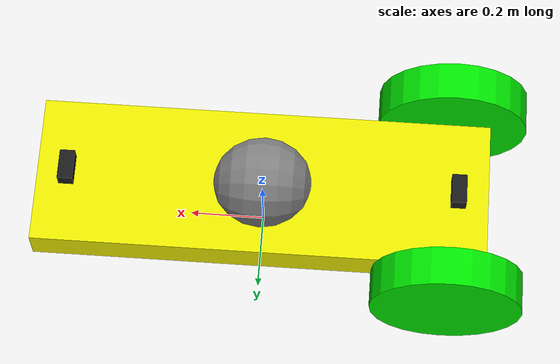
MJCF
<mujoco> <!-- Root element of the MuJoCo model -->

	<asset>

    <texture name="grid" type="2d" builtin="checker" width="512" height="512" rgb1=".2 .3 .4" rgb2=".3 .4 .5"/>
    <material name="grid_mat" texture="grid" texrepeat="10 10" reflectance="0.1"/>
    <material name="ground_mat" rgba=".8 .8 .8 1" reflectance="0.1"/>
</asset>

<visual>
    <global offwidth="640" offheight="480"/>
</visual>
	<!-- Simulation options -->
	<option gravity="0 0 -9.81" /> <!-- Set gravity (z-axis downward) -->
	<worldbody> <!-- Contains all physical objects in the world -->
        <!-- diffuse = light color/intensity, pos = position, dir = direction -->
		 <!-- Multiple lights for better visualization -->
<light diffuse=".5 .5 .5" pos="0 0 3" dir="0 0 -1" castshadow="true"/>
<!-- castshadow="true" = shadows enable -->
<light diffuse=".3 .3 .3" pos="2 2 2" dir="-1 -1 -1"/>
<!-- Side light for fill -->
<light diffuse=".2 .2 .2" pos="-2 -2 2" dir="1 1 -1"/>
<!-- Back light for rim effect -->
		<!-- Ground plane -->
		 <geom type="plane" size="5 5 0.1" rgba=".9 .9 .9 1"/>
		<!-- Large flat surface for robot to move on -->

		<!-- Main robot body -->
		<body name="chassis" pos="0 0 0.2" euler='0 90 0'>
		<!-- pos = initial position (x,y,z)
		     euler = rotation (degrees) -->

			<!-- Free joint allows full 6-DOF movement (x,y,z + rotation) -->
			<joint type="free"/>

             <!-- Camera housing (black box) -->
            <geom name="front_cam_housing" type="box" pos="0 0 0.52" size="0.09 0.04 0.02" rgba="0.1 0.1 0.1 1"/>
            <!-- Camera lens (blue) -->
            <geom name="front_cam_lens" type="cylinder" pos="0 0 0.55" size="0.015 0.005" euler="90 0 0" rgba="0.2 0.4 0.8 1"/>
            <!-- MuJoCo camera -->
            <camera name="front_cam" pos="0 0 0.6" euler="0 0 0" fovy="60"/>

            <!-- ===== REAR CAMERA ===== -->
            <!-- Camera housing (black box) -->
            <geom name="rear_cam_housing" type="box" pos="0 0 -0.52" size="0.09 0.04 0.02" rgba="0.1 0.1 0.1 1"/>
            <!-- Camera lens (red) -->
            <geom name="rear_cam_lens" type="cylinder" pos="0 0 -0.55" size="0.015 0.005" euler="90 0 0" rgba="0.8 0.2 0.2 1"/>
            <!-- MuJoCo camera -->
            <camera name="rear_cam" pos="0 0 -0.6" euler="0 0 180" fovy="60"/>
            <camera name="cam1" mode="trackcom" target="chassis" pos="0 0 1" fovy="60"/>

			<!-- Chassis geometry (box shape) -->
			<geom type="box" size=".05 .2 0.6" rgba=".9 .9 0 1"/>
			<!-- size = half-lengths (x,y,z), color = yellow -->

			<!-- Marker site (used for sensors/tracking) -->
			<site name="marker" pos="0 0 0.0" size="0.14" rgba="1 0 0 0" />
			<!-- A reference point on the robot -->

			<!-- Left wheel -->
			<body name="left-tire" pos="0 0.26 -0.5" euler='90 0 0'>
			<!-- Positioned to left side of chassis -->

				<!-- Hinge joint for wheel rotation -->
				<joint name="left-wheel" type="hinge" axis="0 0 -1"/>
				<!-- Rotates around Z-axis -->

				<!-- Wheel geometry -->
				<geom type="cylinder" size=".2 0.05" rgba="0 .9 0 1" friction="0 0.1 0.1"/>

				<!-- size = radius, half-length -->
			</body>

			<!-- Right wheel -->
			<body name="right-tire" pos="0 -0.26 -0.5" euler='90 0 0'>
			<!-- Positioned to right side -->

				<!-- Hinge joint -->
				<joint name="right-wheel" type="hinge" axis="0 0 -1"/>

				<!-- Wheel geometry -->
				<geom type="cylinder" size=".2 0.05" rgba="0 .9 0 1" friction="0 0.1 0.1"/>
			</body>

						<!-- CASTER WHEEL - Added at the back for stability -->
			<body name="caster-wheel" pos="0 0 0.0" euler='0 0 0'>
				<!-- Inertial properties for swivel base -->
				<inertial pos="0 0 0" mass="0.5" diaginertia="0.001 0.001 0.001"/>

				<!-- Swivel joint - allows caster to rotate horizontally -->
				<joint name="caster-swivel" type="hinge" axis="0 0 1" range="-180 180" damping="0.1"/>

				<!-- Caster fork + wheel -->
				<body name="caster-fork" pos="0 0 0.0" euler='0 0 0'>
					<!-- Inertial properties for fork + wheel -->
					<inertial pos="0 0 0" mass="0.3" diaginertia="0.0005 0.0005 0.0005"/>

					<!-- Wheel rotation joint -->
					<joint name="caster-wheel-joint" type="hinge" axis="0 1 0"/>

					<!-- Caster wheel geometry -->
					<geom type="sphere" size="0.14" rgba="0.5 0.5 0.5 1" mass="0.2"/>
				</body>
			</body>
			<!-- END CASTER WHEEL -->

		</body>
	</worldbody>

	<!-- Sensors -->
	<sensor>
		<!-- Tracks position of the "marker" site -->
		<framepos objtype="site" objname="marker"/>
		<!-- Outputs (x, y, z) of marker in world frame -->
	</sensor>

	<!-- Actuators (motors/controllers) -->
	<actuator>

		<!-- Velocity servo for left wheel -->
		<velocity name="left-velocity-servo" joint="left-wheel" kv="100"/>
		<!-- kv = gain (how strongly it tries to match target velocity) -->

		<!-- Velocity servo for right wheel -->
		<velocity name="right-velocity-servo" joint="right-wheel" kv="100"/>

	</actuator>

</mujoco> <!-- End of model -->

<!--  mujoco a big box
 You put everything inside it:
world
objects
physics  so that why we called it main container (root) -->
<!--   after that use a gravity  -->
<!--  worldbody is the main scene (world) of your simulation so whole world what u want to see inside it exits Everything you see (objects, robots, ground) goes inside this  -->
<!--  geom = geometry (shape) this is actually u see -->
<!--

Measure speed
Important for:
PID control
stability
 -->
